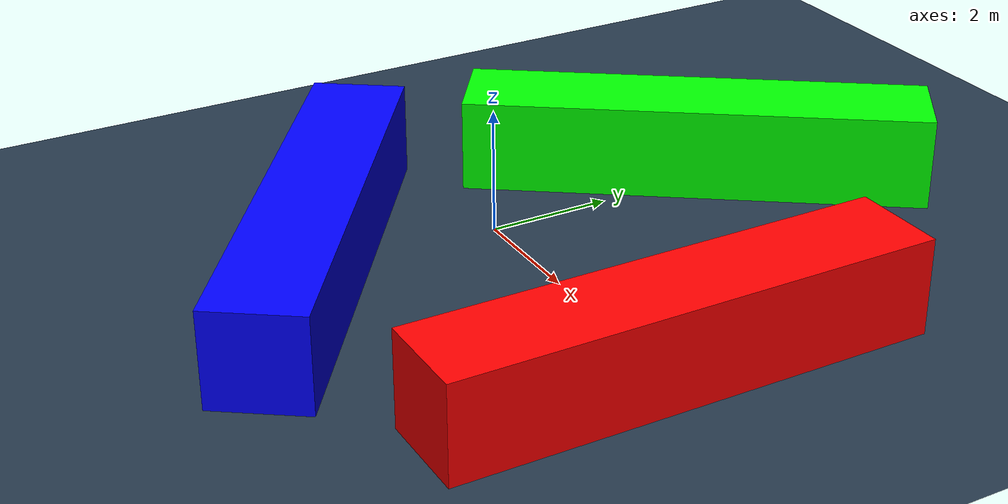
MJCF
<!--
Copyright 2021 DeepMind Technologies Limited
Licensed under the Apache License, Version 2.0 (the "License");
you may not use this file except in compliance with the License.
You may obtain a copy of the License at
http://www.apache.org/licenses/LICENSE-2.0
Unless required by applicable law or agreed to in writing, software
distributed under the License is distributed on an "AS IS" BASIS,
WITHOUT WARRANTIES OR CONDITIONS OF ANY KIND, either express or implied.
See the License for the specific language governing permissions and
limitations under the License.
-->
<mujoco>

  <statistic meansize=".05" />

  <visual>
    <rgba haze="0.15 0.25 0.35 1" />
    <quality shadowsize="4096" />
    <map stiffness="700" shadowscale="0.5" fogstart="1" fogend="15" zfar="40" haze="1" />
  </visual>

  <asset>
    <texture type="skybox" builtin="gradient" rgb1="0.3 0.5 0.7" rgb2="0 0 0" width="512"
      height="512" />
    <texture name="texplane" type="2d" builtin="checker" rgb1=".2 .3 .4" rgb2=".1 0.15 0.2"
      width="512" height="512" mark="cross" markrgb=".8 .8 .8" />

    <material name="matplane" reflectance="0.3" texture="texplane" texrepeat="10 10"
      texuniform="true" />
  </asset>

  <worldbody>
    <light diffuse=".4 .4 .4" specular="0.1 0.1 0.1" pos="0 0 2.0" dir="0 0 -1" castshadow="false" />
    <light directional="true" diffuse=".8 .8 .8" specular="0.2 0.2 0.2" pos="0 0 4" dir="0 0 -1" />

    <geom name="ground" type="plane" size="0 0 1" pos="0 0 0" quat="1 0 0 0" material="matplane"
      condim="1" />
    <body name="object1" pos="5 0 0.75" quat="0 0 0 1">
      <joint type="free" />
      <inertial mass="0.1" pos="0 0 0" diaginertia="0.001 0.001 0.001"></inertial>
      <geom type="box" size="0.75 3.75 0.75" mass="1" pos="0 0 0" rgba="1 0 0 1" />

    </body>
    <body name="object2" pos="0 3.75 0.75" quat="0.3007058 0 0 0.953717">
      <joint type="free" />
      <inertial mass="0.1" pos="0 0 0" diaginertia="0.001 0.001 0.001"></inertial>
      <geom type="box" size="0.75 3.75 0.75" mass="1" pos="0 0 0"  rgba="0 1 0 1"/>
    </body>
    <body name="object3" pos="0 -3 0.75" quat="0.3007058 0 0 0.953717">
      <joint type="free" />
      <inertial mass="0.1" pos="0 0 0" diaginertia="0.001 0.001 0.001"></inertial>
      <geom type="box" size="3.75 0.75 0.75" mass="1" pos="0 0 0" rgba="0 0 1 1"/>
    </body>
  </worldbody>
</mujoco>
